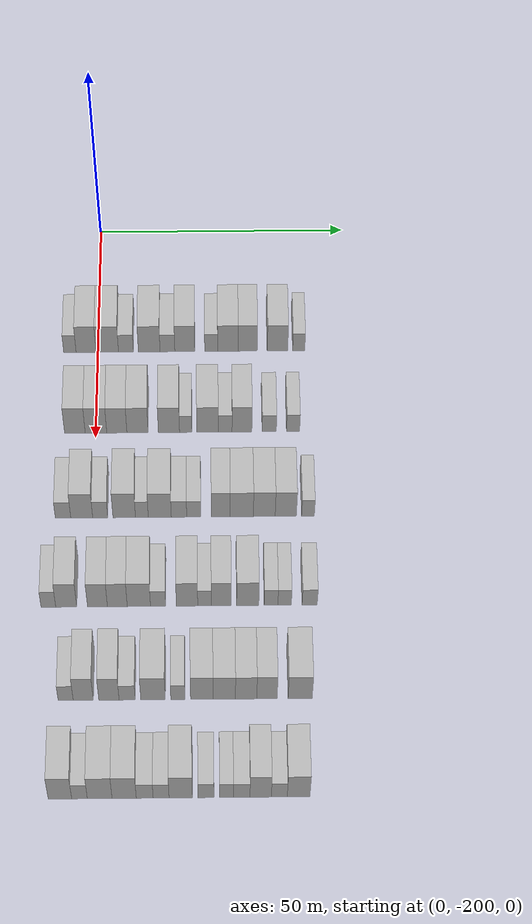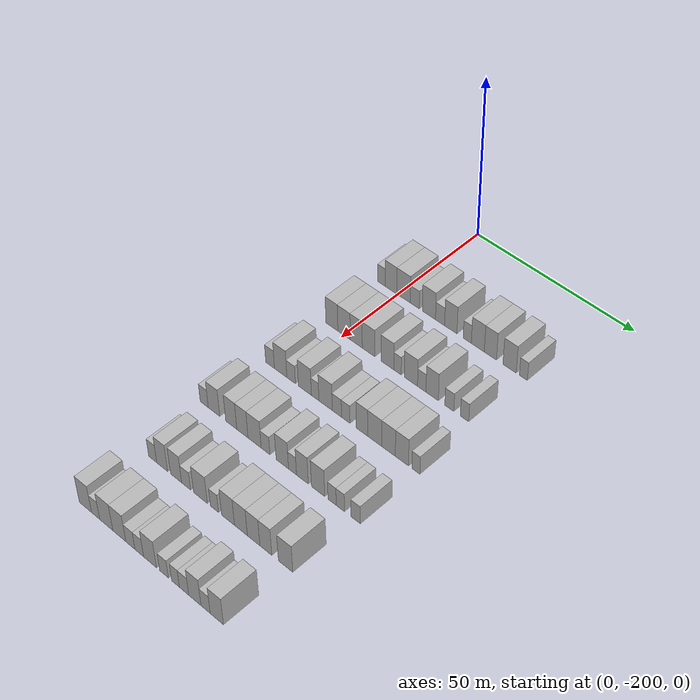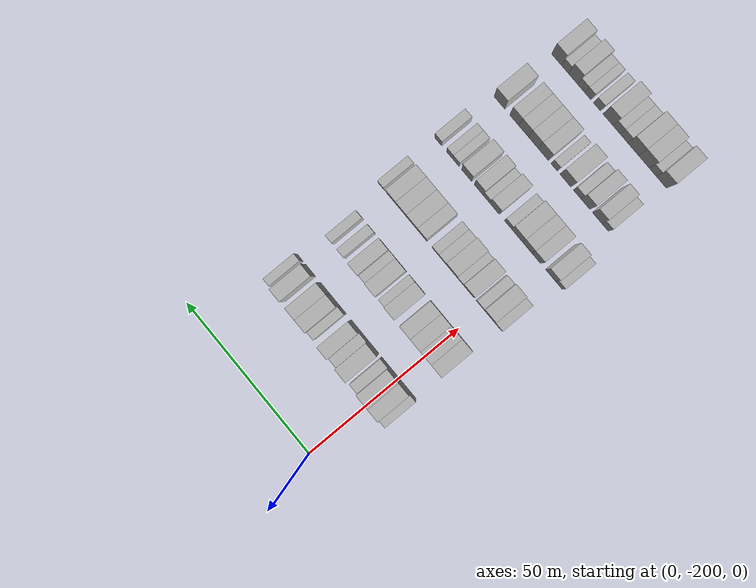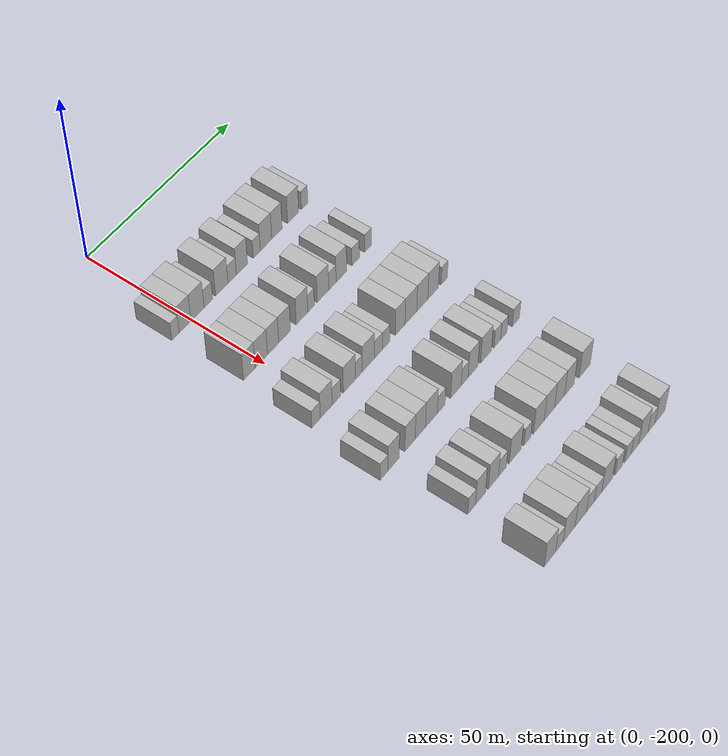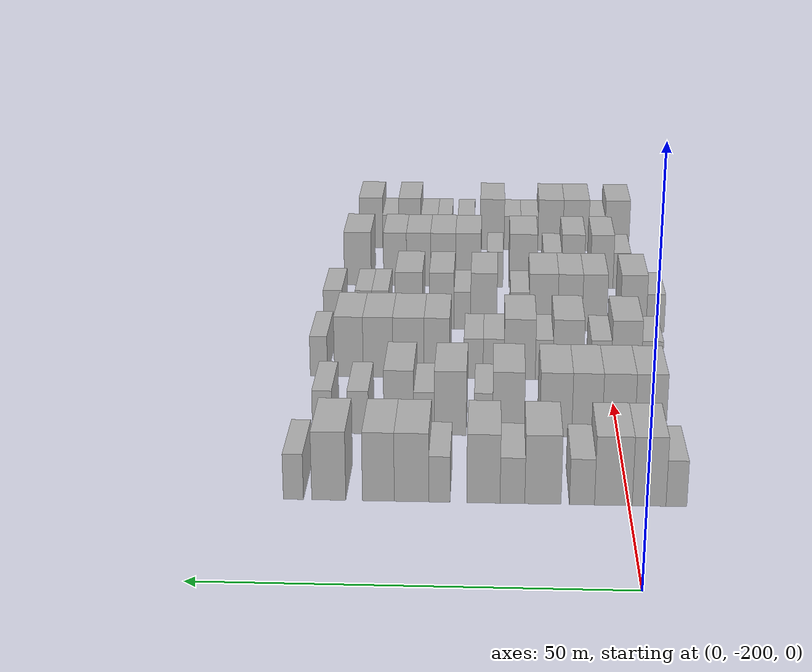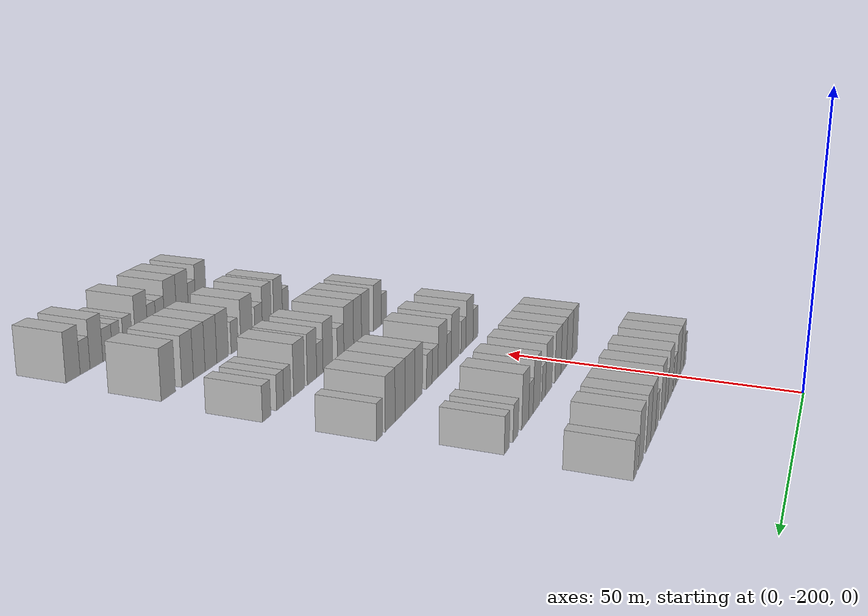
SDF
<sdf version="1.6">
 <world name="default">
  <model name="building_39">
   <static>1</static>
   <pose>25.0000 -205.6031 0 0.000000 0.000000 0.000000</pose>
   <link name="link">
    <pose>0 0 3.00 0 0 0</pose>
    <collision name="collision"><geometry><box><size>10.0000 2.4848 6.0000</size></box></geometry></collision>
    <visual name="visual">
     <cast_shadows>0</cast_shadows>
     <geometry><box><size>10.0000 2.4848 6.0000</size></box></geometry>
     <material>
      <script>
       <uri>model://HANNAS_wall/materials/scripts</uri>
       <uri>model://HANNAS_wall/materials/textures</uri>
       <name>vrc/HANNAS_wall</name>
      </script>
     </material>
    </visual>
   </link>
  </model>
  <model name="building_40">
   <static>1</static>
   <pose>25.0000 -202.3572 0 0.000000 0.000000 0.000000</pose>
   <link name="link">
    <pose>0 0 4.50 0 0 0</pose>
    <collision name="collision"><geometry><box><size>10.0000 4.0070 9.0000</size></box></geometry></collision>
    <visual name="visual">
     <cast_shadows>0</cast_shadows>
     <geometry><box><size>10.0000 4.0070 9.0000</size></box></geometry>
     <material>
      <script>
       <uri>model://HANNAS_wall/materials/scripts</uri>
       <uri>model://HANNAS_wall/materials/textures</uri>
       <name>vrc/HANNAS_wall</name>
      </script>
     </material>
    </visual>
   </link>
  </model>
  <model name="building_41">
   <static>1</static>
   <pose>25.0000 -198.1088 0 0.000000 0.000000 0.000000</pose>
   <link name="link">
    <pose>0 0 4.50 0 0 0</pose>
    <collision name="collision"><geometry><box><size>10.0000 4.4899 9.0000</size></box></geometry></collision>
    <visual name="visual">
     <cast_shadows>0</cast_shadows>
     <geometry><box><size>10.0000 4.4899 9.0000</size></box></geometry>
     <material>
      <script>
       <uri>model://HANNAS_wall/materials/scripts</uri>
       <uri>model://HANNAS_wall/materials/textures</uri>
       <name>vrc/HANNAS_wall</name>
      </script>
     </material>
    </visual>
   </link>
  </model>
  <model name="building_42">
   <static>1</static>
   <pose>25.0000 -194.3705 0 0.000000 0.000000 0.000000</pose>
   <link name="link">
    <pose>0 0 3.00 0 0 0</pose>
    <collision name="collision"><geometry><box><size>10.0000 2.9866 6.0000</size></box></geometry></collision>
    <visual name="visual">
     <cast_shadows>0</cast_shadows>
     <geometry><box><size>10.0000 2.9866 6.0000</size></box></geometry>
     <material>
      <script>
       <uri>model://HANNAS_wall/materials/scripts</uri>
       <uri>model://HANNAS_wall/materials/textures</uri>
       <name>vrc/HANNAS_wall</name>
      </script>
     </material>
    </visual>
   </link>
  </model>
  <model name="building_43">
   <static>1</static>
   <pose>25.0000 -189.7090 0 0.000000 0.000000 0.000000</pose>
   <link name="link">
    <pose>0 0 4.50 0 0 0</pose>
    <collision name="collision"><geometry><box><size>10.0000 4.3365 9.0000</size></box></geometry></collision>
    <visual name="visual">
     <cast_shadows>0</cast_shadows>
     <geometry><box><size>10.0000 4.3365 9.0000</size></box></geometry>
     <material>
      <script>
       <uri>model://HANNAS_wall/materials/scripts</uri>
       <uri>model://HANNAS_wall/materials/textures</uri>
       <name>vrc/HANNAS_wall</name>
      </script>
     </material>
    </visual>
   </link>
  </model>
  <model name="building_44">
   <static>1</static>
   <pose>25.0000 -186.0591 0 0.000000 0.000000 0.000000</pose>
   <link name="link">
    <pose>0 0 3.00 0 0 0</pose>
    <collision name="collision"><geometry><box><size>10.0000 2.9633 6.0000</size></box></geometry></collision>
    <visual name="visual">
     <cast_shadows>0</cast_shadows>
     <geometry><box><size>10.0000 2.9633 6.0000</size></box></geometry>
     <material>
      <script>
       <uri>model://HANNAS_wall/materials/scripts</uri>
       <uri>model://HANNAS_wall/materials/textures</uri>
       <name>vrc/HANNAS_wall</name>
      </script>
     </material>
    </visual>
   </link>
  </model>
  <model name="building_45">
   <static>1</static>
   <pose>25.0000 -182.5844 0 0.000000 0.000000 0.000000</pose>
   <link name="link">
    <pose>0 0 4.50 0 0 0</pose>
    <collision name="collision"><geometry><box><size>10.0000 3.9861 9.0000</size></box></geometry></collision>
    <visual name="visual">
     <cast_shadows>0</cast_shadows>
     <geometry><box><size>10.0000 3.9861 9.0000</size></box></geometry>
     <material>
      <script>
       <uri>model://HANNAS_wall/materials/scripts</uri>
       <uri>model://HANNAS_wall/materials/textures</uri>
       <name>vrc/HANNAS_wall</name>
      </script>
     </material>
    </visual>
   </link>
  </model>
  <model name="building_46">
   <static>1</static>
   <pose>25.0000 -177.3015 0 0.000000 0.000000 0.000000</pose>
   <link name="link">
    <pose>0 0 3.00 0 0 0</pose>
    <collision name="collision"><geometry><box><size>10.0000 2.5799 6.0000</size></box></geometry></collision>
    <visual name="visual">
     <cast_shadows>0</cast_shadows>
     <geometry><box><size>10.0000 2.5799 6.0000</size></box></geometry>
     <material>
      <script>
       <uri>model://HANNAS_wall/materials/scripts</uri>
       <uri>model://HANNAS_wall/materials/textures</uri>
       <name>vrc/HANNAS_wall</name>
      </script>
     </material>
    </visual>
   </link>
  </model>
  <model name="building_47">
   <static>1</static>
   <pose>25.0000 -173.9532 0 0.000000 0.000000 0.000000</pose>
   <link name="link">
    <pose>0 0 4.50 0 0 0</pose>
    <collision name="collision"><geometry><box><size>10.0000 4.1166 9.0000</size></box></geometry></collision>
    <visual name="visual">
     <cast_shadows>0</cast_shadows>
     <geometry><box><size>10.0000 4.1166 9.0000</size></box></geometry>
     <material>
      <script>
       <uri>model://HANNAS_wall/materials/scripts</uri>
       <uri>model://HANNAS_wall/materials/textures</uri>
       <name>vrc/HANNAS_wall</name>
      </script>
     </material>
    </visual>
   </link>
  </model>
  <model name="building_48">
   <static>1</static>
   <pose>25.0000 -169.9814 0 0.000000 0.000000 0.000000</pose>
   <link name="link">
    <pose>0 0 4.50 0 0 0</pose>
    <collision name="collision"><geometry><box><size>10.0000 3.8270 9.0000</size></box></geometry></collision>
    <visual name="visual">
     <cast_shadows>0</cast_shadows>
     <geometry><box><size>10.0000 3.8270 9.0000</size></box></geometry>
     <material>
      <script>
       <uri>model://HANNAS_wall/materials/scripts</uri>
       <uri>model://HANNAS_wall/materials/textures</uri>
       <name>vrc/HANNAS_wall</name>
      </script>
     </material>
    </visual>
   </link>
  </model>
  <model name="building_49">
   <static>1</static>
   <pose>25.0000 -164.0157 0 0.000000 0.000000 0.000000</pose>
   <link name="link">
    <pose>0 0 4.50 0 0 0</pose>
    <collision name="collision"><geometry><box><size>10.0000 4.1044 9.0000</size></box></geometry></collision>
    <visual name="visual">
     <cast_shadows>0</cast_shadows>
     <geometry><box><size>10.0000 4.1044 9.0000</size></box></geometry>
     <material>
      <script>
       <uri>model://HANNAS_wall/materials/scripts</uri>
       <uri>model://HANNAS_wall/materials/textures</uri>
       <name>vrc/HANNAS_wall</name>
      </script>
     </material>
    </visual>
   </link>
  </model>
  <model name="building_50">
   <static>1</static>
   <pose>25.0000 -159.7517 0 0.000000 0.000000 0.000000</pose>
   <link name="link">
    <pose>0 0 3.00 0 0 0</pose>
    <collision name="collision"><geometry><box><size>10.0000 2.4236 6.0000</size></box></geometry></collision>
    <visual name="visual">
     <cast_shadows>0</cast_shadows>
     <geometry><box><size>10.0000 2.4236 6.0000</size></box></geometry>
     <material>
      <script>
       <uri>model://HANNAS_wall/materials/scripts</uri>
       <uri>model://HANNAS_wall/materials/textures</uri>
       <name>vrc/HANNAS_wall</name>
      </script>
     </material>
    </visual>
   </link>
  </model>
  <model name="building_210">
   <static>1</static>
   <pose>44.0000 -204.0883 0 0.000000 0.000000 0.000000</pose>
   <link name="link">
    <pose>0 0 4.50 0 0 0</pose>
    <collision name="collision"><geometry><box><size>10.0000 4.0305 9.0000</size></box></geometry></collision>
    <visual name="visual">
     <cast_shadows>0</cast_shadows>
     <geometry><box><size>10.0000 4.0305 9.0000</size></box></geometry>
     <material>
      <script>
       <uri>model://HANNAS_wall/materials/scripts</uri>
       <uri>model://HANNAS_wall/materials/textures</uri>
       <name>vrc/HANNAS_wall</name>
      </script>
     </material>
    </visual>
   </link>
  </model>
  <model name="building_211">
   <static>1</static>
   <pose>44.0000 -199.9650 0 0.000000 0.000000 0.000000</pose>
   <link name="link">
    <pose>0 0 4.50 0 0 0</pose>
    <collision name="collision"><geometry><box><size>10.0000 4.2163 9.0000</size></box></geometry></collision>
    <visual name="visual">
     <cast_shadows>0</cast_shadows>
     <geometry><box><size>10.0000 4.2163 9.0000</size></box></geometry>
     <material>
      <script>
       <uri>model://HANNAS_wall/materials/scripts</uri>
       <uri>model://HANNAS_wall/materials/textures</uri>
       <name>vrc/HANNAS_wall</name>
      </script>
     </material>
    </visual>
   </link>
  </model>
  <model name="building_212">
   <static>1</static>
   <pose>44.0000 -195.8840 0 0.000000 0.000000 0.000000</pose>
   <link name="link">
    <pose>0 0 4.50 0 0 0</pose>
    <collision name="collision"><geometry><box><size>10.0000 3.9457 9.0000</size></box></geometry></collision>
    <visual name="visual">
     <cast_shadows>0</cast_shadows>
     <geometry><box><size>10.0000 3.9457 9.0000</size></box></geometry>
     <material>
      <script>
       <uri>model://HANNAS_wall/materials/scripts</uri>
       <uri>model://HANNAS_wall/materials/textures</uri>
       <name>vrc/HANNAS_wall</name>
      </script>
     </material>
    </visual>
   </link>
  </model>
  <model name="building_213">
   <static>1</static>
   <pose>44.0000 -191.8312 0 0.000000 0.000000 0.000000</pose>
   <link name="link">
    <pose>0 0 4.50 0 0 0</pose>
    <collision name="collision"><geometry><box><size>10.0000 4.1600 9.0000</size></box></geometry></collision>
    <visual name="visual">
     <cast_shadows>0</cast_shadows>
     <geometry><box><size>10.0000 4.1600 9.0000</size></box></geometry>
     <material>
      <script>
       <uri>model://HANNAS_wall/materials/scripts</uri>
       <uri>model://HANNAS_wall/materials/textures</uri>
       <name>vrc/HANNAS_wall</name>
      </script>
     </material>
    </visual>
   </link>
  </model>
  <model name="building_214">
   <static>1</static>
   <pose>44.0000 -185.6821 0 0.000000 0.000000 0.000000</pose>
   <link name="link">
    <pose>0 0 4.50 0 0 0</pose>
    <collision name="collision"><geometry><box><size>10.0000 4.1380 9.0000</size></box></geometry></collision>
    <visual name="visual">
     <cast_shadows>0</cast_shadows>
     <geometry><box><size>10.0000 4.1380 9.0000</size></box></geometry>
     <material>
      <script>
       <uri>model://HANNAS_wall/materials/scripts</uri>
       <uri>model://HANNAS_wall/materials/textures</uri>
       <name>vrc/HANNAS_wall</name>
      </script>
     </material>
    </visual>
   </link>
  </model>
  <model name="building_215">
   <static>1</static>
   <pose>44.0000 -182.4116 0 0.000000 0.000000 0.000000</pose>
   <link name="link">
    <pose>0 0 3.00 0 0 0</pose>
    <collision name="collision"><geometry><box><size>10.0000 2.4030 6.0000</size></box></geometry></collision>
    <visual name="visual">
     <cast_shadows>0</cast_shadows>
     <geometry><box><size>10.0000 2.4030 6.0000</size></box></geometry>
     <material>
      <script>
       <uri>model://HANNAS_wall/materials/scripts</uri>
       <uri>model://HANNAS_wall/materials/textures</uri>
       <name>vrc/HANNAS_wall</name>
      </script>
     </material>
    </visual>
   </link>
  </model>
  <model name="building_216">
   <static>1</static>
   <pose>44.0000 -178.1093 0 0.000000 0.000000 0.000000</pose>
   <link name="link">
    <pose>0 0 4.50 0 0 0</pose>
    <collision name="collision"><geometry><box><size>10.0000 4.2015 9.0000</size></box></geometry></collision>
    <visual name="visual">
     <cast_shadows>0</cast_shadows>
     <geometry><box><size>10.0000 4.2015 9.0000</size></box></geometry>
     <material>
      <script>
       <uri>model://HANNAS_wall/materials/scripts</uri>
       <uri>model://HANNAS_wall/materials/textures</uri>
       <name>vrc/HANNAS_wall</name>
      </script>
     </material>
    </visual>
   </link>
  </model>
  <model name="building_217">
   <static>1</static>
   <pose>44.0000 -174.6696 0 0.000000 0.000000 0.000000</pose>
   <link name="link">
    <pose>0 0 3.00 0 0 0</pose>
    <collision name="collision"><geometry><box><size>10.0000 2.6779 6.0000</size></box></geometry></collision>
    <visual name="visual">
     <cast_shadows>0</cast_shadows>
     <geometry><box><size>10.0000 2.6779 6.0000</size></box></geometry>
     <material>
      <script>
       <uri>model://HANNAS_wall/materials/scripts</uri>
       <uri>model://HANNAS_wall/materials/textures</uri>
       <name>vrc/HANNAS_wall</name>
      </script>
     </material>
    </visual>
   </link>
  </model>
  <model name="building_218">
   <static>1</static>
   <pose>44.0000 -171.3869 0 0.000000 0.000000 0.000000</pose>
   <link name="link">
    <pose>0 0 4.50 0 0 0</pose>
    <collision name="collision"><geometry><box><size>10.0000 3.8875 9.0000</size></box></geometry></collision>
    <visual name="visual">
     <cast_shadows>0</cast_shadows>
     <geometry><box><size>10.0000 3.8875 9.0000</size></box></geometry>
     <material>
      <script>
       <uri>model://HANNAS_wall/materials/scripts</uri>
       <uri>model://HANNAS_wall/materials/textures</uri>
       <name>vrc/HANNAS_wall</name>
      </script>
     </material>
    </visual>
   </link>
  </model>
  <model name="building_219">
   <static>1</static>
   <pose>44.0000 -166.0498 0 0.000000 0.000000 0.000000</pose>
   <link name="link">
    <pose>0 0 3.00 0 0 0</pose>
    <collision name="collision"><geometry><box><size>10.0000 2.7866 6.0000</size></box></geometry></collision>
    <visual name="visual">
     <cast_shadows>0</cast_shadows>
     <geometry><box><size>10.0000 2.7866 6.0000</size></box></geometry>
     <material>
      <script>
       <uri>model://HANNAS_wall/materials/scripts</uri>
       <uri>model://HANNAS_wall/materials/textures</uri>
       <name>vrc/HANNAS_wall</name>
      </script>
     </material>
    </visual>
   </link>
  </model>
  <model name="building_220">
   <static>1</static>
   <pose>44.0000 -161.3761 0 0.000000 0.000000 0.000000</pose>
   <link name="link">
    <pose>0 0 3.00 0 0 0</pose>
    <collision name="collision"><geometry><box><size>10.0000 2.5609 6.0000</size></box></geometry></collision>
    <visual name="visual">
     <cast_shadows>0</cast_shadows>
     <geometry><box><size>10.0000 2.5609 6.0000</size></box></geometry>
     <material>
      <script>
       <uri>model://HANNAS_wall/materials/scripts</uri>
       <uri>model://HANNAS_wall/materials/textures</uri>
       <name>vrc/HANNAS_wall</name>
      </script>
     </material>
    </visual>
   </link>
  </model>
  <model name="building_371">
   <static>1</static>
   <pose>63.0000 -205.8464 0 0.000000 0.000000 0.000000</pose>
   <link name="link">
    <pose>0 0 3.00 0 0 0</pose>
    <collision name="collision"><geometry><box><size>10.0000 2.9491 6.0000</size></box></geometry></collision>
    <visual name="visual">
     <cast_shadows>0</cast_shadows>
     <geometry><box><size>10.0000 2.9491 6.0000</size></box></geometry>
     <material>
      <script>
       <uri>model://HANNAS_wall/materials/scripts</uri>
       <uri>model://HANNAS_wall/materials/textures</uri>
       <name>vrc/HANNAS_wall</name>
      </script>
     </material>
    </visual>
   </link>
  </model>
  <model name="building_372">
   <static>1</static>
   <pose>63.0000 -202.2777 0 0.000000 0.000000 0.000000</pose>
   <link name="link">
    <pose>0 0 4.50 0 0 0</pose>
    <collision name="collision"><geometry><box><size>10.0000 4.1883 9.0000</size></box></geometry></collision>
    <visual name="visual">
     <cast_shadows>0</cast_shadows>
     <geometry><box><size>10.0000 4.1883 9.0000</size></box></geometry>
     <material>
      <script>
       <uri>model://HANNAS_wall/materials/scripts</uri>
       <uri>model://HANNAS_wall/materials/textures</uri>
       <name>vrc/HANNAS_wall</name>
      </script>
     </material>
    </visual>
   </link>
  </model>
  <model name="building_373">
   <static>1</static>
   <pose>63.0000 -198.7435 0 0.000000 0.000000 0.000000</pose>
   <link name="link">
    <pose>0 0 3.00 0 0 0</pose>
    <collision name="collision"><geometry><box><size>10.0000 2.8802 6.0000</size></box></geometry></collision>
    <visual name="visual">
     <cast_shadows>0</cast_shadows>
     <geometry><box><size>10.0000 2.8802 6.0000</size></box></geometry>
     <material>
      <script>
       <uri>model://HANNAS_wall/materials/scripts</uri>
       <uri>model://HANNAS_wall/materials/textures</uri>
       <name>vrc/HANNAS_wall</name>
      </script>
     </material>
    </visual>
   </link>
  </model>
  <model name="building_374">
   <static>1</static>
   <pose>63.0000 -194.1563 0 0.000000 0.000000 0.000000</pose>
   <link name="link">
    <pose>0 0 4.50 0 0 0</pose>
    <collision name="collision"><geometry><box><size>10.0000 4.2942 9.0000</size></box></geometry></collision>
    <visual name="visual">
     <cast_shadows>0</cast_shadows>
     <geometry><box><size>10.0000 4.2942 9.0000</size></box></geometry>
     <material>
      <script>
       <uri>model://HANNAS_wall/materials/scripts</uri>
       <uri>model://HANNAS_wall/materials/textures</uri>
       <name>vrc/HANNAS_wall</name>
      </script>
     </material>
    </visual>
   </link>
  </model>
  <model name="building_375">
   <static>1</static>
   <pose>63.0000 -190.7854 0 0.000000 0.000000 0.000000</pose>
   <link name="link">
    <pose>0 0 3.00 0 0 0</pose>
    <collision name="collision"><geometry><box><size>10.0000 2.4475 6.0000</size></box></geometry></collision>
    <visual name="visual">
     <cast_shadows>0</cast_shadows>
     <geometry><box><size>10.0000 2.4475 6.0000</size></box></geometry>
     <material>
      <script>
       <uri>model://HANNAS_wall/materials/scripts</uri>
       <uri>model://HANNAS_wall/materials/textures</uri>
       <name>vrc/HANNAS_wall</name>
      </script>
     </material>
    </visual>
   </link>
  </model>
  <model name="building_376">
   <static>1</static>
   <pose>63.0000 -187.3639 0 0.000000 0.000000 0.000000</pose>
   <link name="link">
    <pose>0 0 4.50 0 0 0</pose>
    <collision name="collision"><geometry><box><size>10.0000 4.3954 9.0000</size></box></geometry></collision>
    <visual name="visual">
     <cast_shadows>0</cast_shadows>
     <geometry><box><size>10.0000 4.3954 9.0000</size></box></geometry>
     <material>
      <script>
       <uri>model://HANNAS_wall/materials/scripts</uri>
       <uri>model://HANNAS_wall/materials/textures</uri>
       <name>vrc/HANNAS_wall</name>
      </script>
     </material>
    </visual>
   </link>
  </model>
  <model name="building_377">
   <static>1</static>
   <pose>63.0000 -183.6902 0 0.000000 0.000000 0.000000</pose>
   <link name="link">
    <pose>0 0 3.00 0 0 0</pose>
    <collision name="collision"><geometry><box><size>10.0000 2.9520 6.0000</size></box></geometry></collision>
    <visual name="visual">
     <cast_shadows>0</cast_shadows>
     <geometry><box><size>10.0000 2.9520 6.0000</size></box></geometry>
     <material>
      <script>
       <uri>model://HANNAS_wall/materials/scripts</uri>
       <uri>model://HANNAS_wall/materials/textures</uri>
       <name>vrc/HANNAS_wall</name>
      </script>
     </material>
    </visual>
   </link>
  </model>
  <model name="building_378">
   <static>1</static>
   <pose>63.0000 -180.8607 0 0.000000 0.000000 0.000000</pose>
   <link name="link">
    <pose>0 0 3.00 0 0 0</pose>
    <collision name="collision"><geometry><box><size>10.0000 2.7070 6.0000</size></box></geometry></collision>
    <visual name="visual">
     <cast_shadows>0</cast_shadows>
     <geometry><box><size>10.0000 2.7070 6.0000</size></box></geometry>
     <material>
      <script>
       <uri>model://HANNAS_wall/materials/scripts</uri>
       <uri>model://HANNAS_wall/materials/textures</uri>
       <name>vrc/HANNAS_wall</name>
      </script>
     </material>
    </visual>
   </link>
  </model>
  <model name="building_379">
   <static>1</static>
   <pose>63.0000 -175.7053 0 0.000000 0.000000 0.000000</pose>
   <link name="link">
    <pose>0 0 4.50 0 0 0</pose>
    <collision name="collision"><geometry><box><size>10.0000 3.6039 9.0000</size></box></geometry></collision>
    <visual name="visual">
     <cast_shadows>0</cast_shadows>
     <geometry><box><size>10.0000 3.6039 9.0000</size></box></geometry>
     <material>
      <script>
       <uri>model://HANNAS_wall/materials/scripts</uri>
       <uri>model://HANNAS_wall/materials/textures</uri>
       <name>vrc/HANNAS_wall</name>
      </script>
     </material>
    </visual>
   </link>
  </model>
  <model name="building_380">
   <static>1</static>
   <pose>63.0000 -171.6891 0 0.000000 0.000000 0.000000</pose>
   <link name="link">
    <pose>0 0 4.50 0 0 0</pose>
    <collision name="collision"><geometry><box><size>10.0000 4.4285 9.0000</size></box></geometry></collision>
    <visual name="visual">
     <cast_shadows>0</cast_shadows>
     <geometry><box><size>10.0000 4.4285 9.0000</size></box></geometry>
     <material>
      <script>
       <uri>model://HANNAS_wall/materials/scripts</uri>
       <uri>model://HANNAS_wall/materials/textures</uri>
       <name>vrc/HANNAS_wall</name>
      </script>
     </material>
    </visual>
   </link>
  </model>
  <model name="building_381">
   <static>1</static>
   <pose>63.0000 -167.3889 0 0.000000 0.000000 0.000000</pose>
   <link name="link">
    <pose>0 0 4.50 0 0 0</pose>
    <collision name="collision"><geometry><box><size>10.0000 4.1718 9.0000</size></box></geometry></collision>
    <visual name="visual">
     <cast_shadows>0</cast_shadows>
     <geometry><box><size>10.0000 4.1718 9.0000</size></box></geometry>
     <material>
      <script>
       <uri>model://HANNAS_wall/materials/scripts</uri>
       <uri>model://HANNAS_wall/materials/textures</uri>
       <name>vrc/HANNAS_wall</name>
      </script>
     </material>
    </visual>
   </link>
  </model>
  <model name="building_382">
   <static>1</static>
   <pose>63.0000 -163.2753 0 0.000000 0.000000 0.000000</pose>
   <link name="link">
    <pose>0 0 4.50 0 0 0</pose>
    <collision name="collision"><geometry><box><size>10.0000 4.0555 9.0000</size></box></geometry></collision>
    <visual name="visual">
     <cast_shadows>0</cast_shadows>
     <geometry><box><size>10.0000 4.0555 9.0000</size></box></geometry>
     <material>
      <script>
       <uri>model://HANNAS_wall/materials/scripts</uri>
       <uri>model://HANNAS_wall/materials/textures</uri>
       <name>vrc/HANNAS_wall</name>
      </script>
     </material>
    </visual>
   </link>
  </model>
  <model name="building_383">
   <static>1</static>
   <pose>63.0000 -159.0303 0 0.000000 0.000000 0.000000</pose>
   <link name="link">
    <pose>0 0 3.00 0 0 0</pose>
    <collision name="collision"><geometry><box><size>10.0000 2.4345 6.0000</size></box></geometry></collision>
    <visual name="visual">
     <cast_shadows>0</cast_shadows>
     <geometry><box><size>10.0000 2.4345 6.0000</size></box></geometry>
     <material>
      <script>
       <uri>model://HANNAS_wall/materials/scripts</uri>
       <uri>model://HANNAS_wall/materials/textures</uri>
       <name>vrc/HANNAS_wall</name>
      </script>
     </material>
    </visual>
   </link>
  </model>
  <model name="building_548">
   <static>1</static>
   <pose>82.0000 -208.0111 0 0.000000 0.000000 0.000000</pose>
   <link name="link">
    <pose>0 0 3.00 0 0 0</pose>
    <collision name="collision"><geometry><box><size>10.0000 2.7335 6.0000</size></box></geometry></collision>
    <visual name="visual">
     <cast_shadows>0</cast_shadows>
     <geometry><box><size>10.0000 2.7335 6.0000</size></box></geometry>
     <material>
      <script>
       <uri>model://HANNAS_wall/materials/scripts</uri>
       <uri>model://HANNAS_wall/materials/textures</uri>
       <name>vrc/HANNAS_wall</name>
      </script>
     </material>
    </visual>
   </link>
  </model>
  <model name="building_549">
   <static>1</static>
   <pose>82.0000 -204.6798 0 0.000000 0.000000 0.000000</pose>
   <link name="link">
    <pose>0 0 4.50 0 0 0</pose>
    <collision name="collision"><geometry><box><size>10.0000 3.9291 9.0000</size></box></geometry></collision>
    <visual name="visual">
     <cast_shadows>0</cast_shadows>
     <geometry><box><size>10.0000 3.9291 9.0000</size></box></geometry>
     <material>
      <script>
       <uri>model://HANNAS_wall/materials/scripts</uri>
       <uri>model://HANNAS_wall/materials/textures</uri>
       <name>vrc/HANNAS_wall</name>
      </script>
     </material>
    </visual>
   </link>
  </model>
  <model name="building_550">
   <static>1</static>
   <pose>82.0000 -198.8608 0 0.000000 0.000000 0.000000</pose>
   <link name="link">
    <pose>0 0 4.50 0 0 0</pose>
    <collision name="collision"><geometry><box><size>10.0000 3.7090 9.0000</size></box></geometry></collision>
    <visual name="visual">
     <cast_shadows>0</cast_shadows>
     <geometry><box><size>10.0000 3.7090 9.0000</size></box></geometry>
     <material>
      <script>
       <uri>model://HANNAS_wall/materials/scripts</uri>
       <uri>model://HANNAS_wall/materials/textures</uri>
       <name>vrc/HANNAS_wall</name>
      </script>
     </material>
    </visual>
   </link>
  </model>
  <model name="building_551">
   <static>1</static>
   <pose>82.0000 -195.1582 0 0.000000 0.000000 0.000000</pose>
   <link name="link">
    <pose>0 0 4.50 0 0 0</pose>
    <collision name="collision"><geometry><box><size>10.0000 3.6963 9.0000</size></box></geometry></collision>
    <visual name="visual">
     <cast_shadows>0</cast_shadows>
     <geometry><box><size>10.0000 3.6963 9.0000</size></box></geometry>
     <material>
      <script>
       <uri>model://HANNAS_wall/materials/scripts</uri>
       <uri>model://HANNAS_wall/materials/textures</uri>
       <name>vrc/HANNAS_wall</name>
      </script>
     </material>
    </visual>
   </link>
  </model>
  <model name="building_552">
   <static>1</static>
   <pose>82.0000 -191.1469 0 0.000000 0.000000 0.000000</pose>
   <link name="link">
    <pose>0 0 4.50 0 0 0</pose>
    <collision name="collision"><geometry><box><size>10.0000 4.3262 9.0000</size></box></geometry></collision>
    <visual name="visual">
     <cast_shadows>0</cast_shadows>
     <geometry><box><size>10.0000 4.3262 9.0000</size></box></geometry>
     <material>
      <script>
       <uri>model://HANNAS_wall/materials/scripts</uri>
       <uri>model://HANNAS_wall/materials/textures</uri>
       <name>vrc/HANNAS_wall</name>
      </script>
     </material>
    </visual>
   </link>
  </model>
  <model name="building_553">
   <static>1</static>
   <pose>82.0000 -187.5595 0 0.000000 0.000000 0.000000</pose>
   <link name="link">
    <pose>0 0 3.00 0 0 0</pose>
    <collision name="collision"><geometry><box><size>10.0000 2.8487 6.0000</size></box></geometry></collision>
    <visual name="visual">
     <cast_shadows>0</cast_shadows>
     <geometry><box><size>10.0000 2.8487 6.0000</size></box></geometry>
     <material>
      <script>
       <uri>model://HANNAS_wall/materials/scripts</uri>
       <uri>model://HANNAS_wall/materials/textures</uri>
       <name>vrc/HANNAS_wall</name>
      </script>
     </material>
    </visual>
   </link>
  </model>
  <model name="building_554">
   <static>1</static>
   <pose>82.0000 -182.1514 0 0.000000 0.000000 0.000000</pose>
   <link name="link">
    <pose>0 0 4.50 0 0 0</pose>
    <collision name="collision"><geometry><box><size>10.0000 3.9675 9.0000</size></box></geometry></collision>
    <visual name="visual">
     <cast_shadows>0</cast_shadows>
     <geometry><box><size>10.0000 3.9675 9.0000</size></box></geometry>
     <material>
      <script>
       <uri>model://HANNAS_wall/materials/scripts</uri>
       <uri>model://HANNAS_wall/materials/textures</uri>
       <name>vrc/HANNAS_wall</name>
      </script>
     </material>
    </visual>
   </link>
  </model>
  <model name="building_555">
   <static>1</static>
   <pose>82.0000 -178.8977 0 0.000000 0.000000 0.000000</pose>
   <link name="link">
    <pose>0 0 3.00 0 0 0</pose>
    <collision name="collision"><geometry><box><size>10.0000 2.5398 6.0000</size></box></geometry></collision>
    <visual name="visual">
     <cast_shadows>0</cast_shadows>
     <geometry><box><size>10.0000 2.5398 6.0000</size></box></geometry>
     <material>
      <script>
       <uri>model://HANNAS_wall/materials/scripts</uri>
       <uri>model://HANNAS_wall/materials/textures</uri>
       <name>vrc/HANNAS_wall</name>
      </script>
     </material>
    </visual>
   </link>
  </model>
  <model name="building_556">
   <static>1</static>
   <pose>82.0000 -175.7666 0 0.000000 0.000000 0.000000</pose>
   <link name="link">
    <pose>0 0 4.50 0 0 0</pose>
    <collision name="collision"><geometry><box><size>10.0000 3.7225 9.0000</size></box></geometry></collision>
    <visual name="visual">
     <cast_shadows>0</cast_shadows>
     <geometry><box><size>10.0000 3.7225 9.0000</size></box></geometry>
     <material>
      <script>
       <uri>model://HANNAS_wall/materials/scripts</uri>
       <uri>model://HANNAS_wall/materials/textures</uri>
       <name>vrc/HANNAS_wall</name>
      </script>
     </material>
    </visual>
   </link>
  </model>
  <model name="building_557">
   <static>1</static>
   <pose>82.0000 -170.8367 0 0.000000 0.000000 0.000000</pose>
   <link name="link">
    <pose>0 0 4.50 0 0 0</pose>
    <collision name="collision"><geometry><box><size>10.0000 4.1372 9.0000</size></box></geometry></collision>
    <visual name="visual">
     <cast_shadows>0</cast_shadows>
     <geometry><box><size>10.0000 4.1372 9.0000</size></box></geometry>
     <material>
      <script>
       <uri>model://HANNAS_wall/materials/scripts</uri>
       <uri>model://HANNAS_wall/materials/textures</uri>
       <name>vrc/HANNAS_wall</name>
      </script>
     </material>
    </visual>
   </link>
  </model>
  <model name="building_558">
   <static>1</static>
   <pose>82.0000 -166.4926 0 0.000000 0.000000 0.000000</pose>
   <link name="link">
    <pose>0 0 3.00 0 0 0</pose>
    <collision name="collision"><geometry><box><size>10.0000 2.5511 6.0000</size></box></geometry></collision>
    <visual name="visual">
     <cast_shadows>0</cast_shadows>
     <geometry><box><size>10.0000 2.5511 6.0000</size></box></geometry>
     <material>
      <script>
       <uri>model://HANNAS_wall/materials/scripts</uri>
       <uri>model://HANNAS_wall/materials/textures</uri>
       <name>vrc/HANNAS_wall</name>
      </script>
     </material>
    </visual>
   </link>
  </model>
  <model name="building_559">
   <static>1</static>
   <pose>82.0000 -163.9585 0 0.000000 0.000000 0.000000</pose>
   <link name="link">
    <pose>0 0 3.00 0 0 0</pose>
    <collision name="collision"><geometry><box><size>10.0000 2.5170 6.0000</size></box></geometry></collision>
    <visual name="visual">
     <cast_shadows>0</cast_shadows>
     <geometry><box><size>10.0000 2.5170 6.0000</size></box></geometry>
     <material>
      <script>
       <uri>model://HANNAS_wall/materials/scripts</uri>
       <uri>model://HANNAS_wall/materials/textures</uri>
       <name>vrc/HANNAS_wall</name>
      </script>
     </material>
    </visual>
   </link>
  </model>
  <model name="building_560">
   <static>1</static>
   <pose>82.0000 -159.2888 0 0.000000 0.000000 0.000000</pose>
   <link name="link">
    <pose>0 0 3.00 0 0 0</pose>
    <collision name="collision"><geometry><box><size>10.0000 2.8225 6.0000</size></box></geometry></collision>
    <visual name="visual">
     <cast_shadows>0</cast_shadows>
     <geometry><box><size>10.0000 2.8225 6.0000</size></box></geometry>
     <material>
      <script>
       <uri>model://HANNAS_wall/materials/scripts</uri>
       <uri>model://HANNAS_wall/materials/textures</uri>
       <name>vrc/HANNAS_wall</name>
      </script>
     </material>
    </visual>
   </link>
  </model>
  <model name="building_728">
   <static>1</static>
   <pose>101.0000 -204.2402 0 0.000000 0.000000 0.000000</pose>
   <link name="link">
    <pose>0 0 3.00 0 0 0</pose>
    <collision name="collision"><geometry><box><size>10.0000 2.7378 6.0000</size></box></geometry></collision>
    <visual name="visual">
     <cast_shadows>0</cast_shadows>
     <geometry><box><size>10.0000 2.7378 6.0000</size></box></geometry>
     <material>
      <script>
       <uri>model://HANNAS_wall/materials/scripts</uri>
       <uri>model://HANNAS_wall/materials/textures</uri>
       <name>vrc/HANNAS_wall</name>
      </script>
     </material>
    </visual>
   </link>
  </model>
  <model name="building_729">
   <static>1</static>
   <pose>101.0000 -201.0414 0 0.000000 0.000000 0.000000</pose>
   <link name="link">
    <pose>0 0 4.50 0 0 0</pose>
    <collision name="collision"><geometry><box><size>10.0000 3.6598 9.0000</size></box></geometry></collision>
    <visual name="visual">
     <cast_shadows>0</cast_shadows>
     <geometry><box><size>10.0000 3.6598 9.0000</size></box></geometry>
     <material>
      <script>
       <uri>model://HANNAS_wall/materials/scripts</uri>
       <uri>model://HANNAS_wall/materials/textures</uri>
       <name>vrc/HANNAS_wall</name>
      </script>
     </material>
    </visual>
   </link>
  </model>
  <model name="building_730">
   <static>1</static>
   <pose>101.0000 -196.3730 0 0.000000 0.000000 0.000000</pose>
   <link name="link">
    <pose>0 0 4.50 0 0 0</pose>
    <collision name="collision"><geometry><box><size>10.0000 3.6771 9.0000</size></box></geometry></collision>
    <visual name="visual">
     <cast_shadows>0</cast_shadows>
     <geometry><box><size>10.0000 3.6771 9.0000</size></box></geometry>
     <material>
      <script>
       <uri>model://HANNAS_wall/materials/scripts</uri>
       <uri>model://HANNAS_wall/materials/textures</uri>
       <name>vrc/HANNAS_wall</name>
      </script>
     </material>
    </visual>
   </link>
  </model>
  <model name="building_731">
   <static>1</static>
   <pose>101.0000 -193.0567 0 0.000000 0.000000 0.000000</pose>
   <link name="link">
    <pose>0 0 3.00 0 0 0</pose>
    <collision name="collision"><geometry><box><size>10.0000 2.9556 6.0000</size></box></geometry></collision>
    <visual name="visual">
     <cast_shadows>0</cast_shadows>
     <geometry><box><size>10.0000 2.9556 6.0000</size></box></geometry>
     <material>
      <script>
       <uri>model://HANNAS_wall/materials/scripts</uri>
       <uri>model://HANNAS_wall/materials/textures</uri>
       <name>vrc/HANNAS_wall</name>
      </script>
     </material>
    </visual>
   </link>
  </model>
  <model name="building_732">
   <static>1</static>
   <pose>101.0000 -188.3492 0 0.000000 0.000000 0.000000</pose>
   <link name="link">
    <pose>0 0 4.50 0 0 0</pose>
    <collision name="collision"><geometry><box><size>10.0000 4.4595 9.0000</size></box></geometry></collision>
    <visual name="visual">
     <cast_shadows>0</cast_shadows>
     <geometry><box><size>10.0000 4.4595 9.0000</size></box></geometry>
     <material>
      <script>
       <uri>model://HANNAS_wall/materials/scripts</uri>
       <uri>model://HANNAS_wall/materials/textures</uri>
       <name>vrc/HANNAS_wall</name>
      </script>
     </material>
    </visual>
   </link>
  </model>
  <model name="building_733">
   <static>1</static>
   <pose>101.0000 -183.8188 0 0.000000 0.000000 0.000000</pose>
   <link name="link">
    <pose>0 0 3.00 0 0 0</pose>
    <collision name="collision"><geometry><box><size>10.0000 2.6013 6.0000</size></box></geometry></collision>
    <visual name="visual">
     <cast_shadows>0</cast_shadows>
     <geometry><box><size>10.0000 2.6013 6.0000</size></box></geometry>
     <material>
      <script>
       <uri>model://HANNAS_wall/materials/scripts</uri>
       <uri>model://HANNAS_wall/materials/textures</uri>
       <name>vrc/HANNAS_wall</name>
      </script>
     </material>
    </visual>
   </link>
  </model>
  <model name="building_734">
   <static>1</static>
   <pose>101.0000 -179.4682 0 0.000000 0.000000 0.000000</pose>
   <link name="link">
    <pose>0 0 4.50 0 0 0</pose>
    <collision name="collision"><geometry><box><size>10.0000 4.0998 9.0000</size></box></geometry></collision>
    <visual name="visual">
     <cast_shadows>0</cast_shadows>
     <geometry><box><size>10.0000 4.0998 9.0000</size></box></geometry>
     <material>
      <script>
       <uri>model://HANNAS_wall/materials/scripts</uri>
       <uri>model://HANNAS_wall/materials/textures</uri>
       <name>vrc/HANNAS_wall</name>
      </script>
     </material>
    </visual>
   </link>
  </model>
  <model name="building_735">
   <static>1</static>
   <pose>101.0000 -175.3942 0 0.000000 0.000000 0.000000</pose>
   <link name="link">
    <pose>0 0 4.50 0 0 0</pose>
    <collision name="collision"><geometry><box><size>10.0000 4.0483 9.0000</size></box></geometry></collision>
    <visual name="visual">
     <cast_shadows>0</cast_shadows>
     <geometry><box><size>10.0000 4.0483 9.0000</size></box></geometry>
     <material>
      <script>
       <uri>model://HANNAS_wall/materials/scripts</uri>
       <uri>model://HANNAS_wall/materials/textures</uri>
       <name>vrc/HANNAS_wall</name>
      </script>
     </material>
    </visual>
   </link>
  </model>
  <model name="building_736">
   <static>1</static>
   <pose>101.0000 -171.4279 0 0.000000 0.000000 0.000000</pose>
   <link name="link">
    <pose>0 0 4.50 0 0 0</pose>
    <collision name="collision"><geometry><box><size>10.0000 3.8842 9.0000</size></box></geometry></collision>
    <visual name="visual">
     <cast_shadows>0</cast_shadows>
     <geometry><box><size>10.0000 3.8842 9.0000</size></box></geometry>
     <material>
      <script>
       <uri>model://HANNAS_wall/materials/scripts</uri>
       <uri>model://HANNAS_wall/materials/textures</uri>
       <name>vrc/HANNAS_wall</name>
      </script>
     </material>
    </visual>
   </link>
  </model>
  <model name="building_737">
   <static>1</static>
   <pose>101.0000 -167.6332 0 0.000000 0.000000 0.000000</pose>
   <link name="link">
    <pose>0 0 4.50 0 0 0</pose>
    <collision name="collision"><geometry><box><size>10.0000 3.7051 9.0000</size></box></geometry></collision>
    <visual name="visual">
     <cast_shadows>0</cast_shadows>
     <geometry><box><size>10.0000 3.7051 9.0000</size></box></geometry>
     <material>
      <script>
       <uri>model://HANNAS_wall/materials/scripts</uri>
       <uri>model://HANNAS_wall/materials/textures</uri>
       <name>vrc/HANNAS_wall</name>
      </script>
     </material>
    </visual>
   </link>
  </model>
  <model name="building_738">
   <static>1</static>
   <pose>101.0000 -161.5920 0 0.000000 0.000000 0.000000</pose>
   <link name="link">
    <pose>0 0 4.50 0 0 0</pose>
    <collision name="collision"><geometry><box><size>10.0000 4.3774 9.0000</size></box></geometry></collision>
    <visual name="visual">
     <cast_shadows>0</cast_shadows>
     <geometry><box><size>10.0000 4.3774 9.0000</size></box></geometry>
     <material>
      <script>
       <uri>model://HANNAS_wall/materials/scripts</uri>
       <uri>model://HANNAS_wall/materials/textures</uri>
       <name>vrc/HANNAS_wall</name>
      </script>
     </material>
    </visual>
   </link>
  </model>
  <model name="building_892">
   <static>1</static>
   <pose>120.0000 -204.7067 0 0.000000 0.000000 0.000000</pose>
   <link name="link">
    <pose>0 0 4.50 0 0 0</pose>
    <collision name="collision"><geometry><box><size>10.0000 4.1635 9.0000</size></box></geometry></collision>
    <visual name="visual">
     <cast_shadows>0</cast_shadows>
     <geometry><box><size>10.0000 4.1635 9.0000</size></box></geometry>
     <material>
      <script>
       <uri>model://HANNAS_wall/materials/scripts</uri>
       <uri>model://HANNAS_wall/materials/textures</uri>
       <name>vrc/HANNAS_wall</name>
      </script>
     </material>
    </visual>
   </link>
  </model>
  <model name="building_893">
   <static>1</static>
   <pose>120.0000 -201.2400 0 0.000000 0.000000 0.000000</pose>
   <link name="link">
    <pose>0 0 3.00 0 0 0</pose>
    <collision name="collision"><geometry><box><size>10.0000 2.7698 6.0000</size></box></geometry></collision>
    <visual name="visual">
     <cast_shadows>0</cast_shadows>
     <geometry><box><size>10.0000 2.7698 6.0000</size></box></geometry>
     <material>
      <script>
       <uri>model://HANNAS_wall/materials/scripts</uri>
       <uri>model://HANNAS_wall/materials/textures</uri>
       <name>vrc/HANNAS_wall</name>
      </script>
     </material>
    </visual>
   </link>
  </model>
  <model name="building_894">
   <static>1</static>
   <pose>120.0000 -197.6636 0 0.000000 0.000000 0.000000</pose>
   <link name="link">
    <pose>0 0 4.50 0 0 0</pose>
    <collision name="collision"><geometry><box><size>10.0000 4.3830 9.0000</size></box></geometry></collision>
    <visual name="visual">
     <cast_shadows>0</cast_shadows>
     <geometry><box><size>10.0000 4.3830 9.0000</size></box></geometry>
     <material>
      <script>
       <uri>model://HANNAS_wall/materials/scripts</uri>
       <uri>model://HANNAS_wall/materials/textures</uri>
       <name>vrc/HANNAS_wall</name>
      </script>
     </material>
    </visual>
   </link>
  </model>
  <model name="building_895">
   <static>1</static>
   <pose>120.0000 -193.3256 0 0.000000 0.000000 0.000000</pose>
   <link name="link">
    <pose>0 0 4.50 0 0 0</pose>
    <collision name="collision"><geometry><box><size>10.0000 4.2930 9.0000</size></box></geometry></collision>
    <visual name="visual">
     <cast_shadows>0</cast_shadows>
     <geometry><box><size>10.0000 4.2930 9.0000</size></box></geometry>
     <material>
      <script>
       <uri>model://HANNAS_wall/materials/scripts</uri>
       <uri>model://HANNAS_wall/materials/textures</uri>
       <name>vrc/HANNAS_wall</name>
      </script>
     </material>
    </visual>
   </link>
  </model>
  <model name="building_896">
   <static>1</static>
   <pose>120.0000 -189.6833 0 0.000000 0.000000 0.000000</pose>
   <link name="link">
    <pose>0 0 3.00 0 0 0</pose>
    <collision name="collision"><geometry><box><size>10.0000 2.9917 6.0000</size></box></geometry></collision>
    <visual name="visual">
     <cast_shadows>0</cast_shadows>
     <geometry><box><size>10.0000 2.9917 6.0000</size></box></geometry>
     <material>
      <script>
       <uri>model://HANNAS_wall/materials/scripts</uri>
       <uri>model://HANNAS_wall/materials/textures</uri>
       <name>vrc/HANNAS_wall</name>
      </script>
     </material>
    </visual>
   </link>
  </model>
  <model name="building_897">
   <static>1</static>
   <pose>120.0000 -186.7782 0 0.000000 0.000000 0.000000</pose>
   <link name="link">
    <pose>0 0 3.00 0 0 0</pose>
    <collision name="collision"><geometry><box><size>10.0000 2.8185 6.0000</size></box></geometry></collision>
    <visual name="visual">
     <cast_shadows>0</cast_shadows>
     <geometry><box><size>10.0000 2.8185 6.0000</size></box></geometry>
     <material>
      <script>
       <uri>model://HANNAS_wall/materials/scripts</uri>
       <uri>model://HANNAS_wall/materials/textures</uri>
       <name>vrc/HANNAS_wall</name>
      </script>
     </material>
    </visual>
   </link>
  </model>
  <model name="building_898">
   <static>1</static>
   <pose>120.0000 -183.3016 0 0.000000 0.000000 0.000000</pose>
   <link name="link">
    <pose>0 0 4.50 0 0 0</pose>
    <collision name="collision"><geometry><box><size>10.0000 4.1346 9.0000</size></box></geometry></collision>
    <visual name="visual">
     <cast_shadows>0</cast_shadows>
     <geometry><box><size>10.0000 4.1346 9.0000</size></box></geometry>
     <material>
      <script>
       <uri>model://HANNAS_wall/materials/scripts</uri>
       <uri>model://HANNAS_wall/materials/textures</uri>
       <name>vrc/HANNAS_wall</name>
      </script>
     </material>
    </visual>
   </link>
  </model>
  <model name="building_899">
   <static>1</static>
   <pose>120.0000 -178.8159 0 0.000000 0.000000 0.000000</pose>
   <link name="link">
    <pose>0 0 3.00 0 0 0</pose>
    <collision name="collision"><geometry><box><size>10.0000 2.8370 6.0000</size></box></geometry></collision>
    <visual name="visual">
     <cast_shadows>0</cast_shadows>
     <geometry><box><size>10.0000 2.8370 6.0000</size></box></geometry>
     <material>
      <script>
       <uri>model://HANNAS_wall/materials/scripts</uri>
       <uri>model://HANNAS_wall/materials/textures</uri>
       <name>vrc/HANNAS_wall</name>
      </script>
     </material>
    </visual>
   </link>
  </model>
  <model name="building_900">
   <static>1</static>
   <pose>120.0000 -175.1718 0 0.000000 0.000000 0.000000</pose>
   <link name="link">
    <pose>0 0 3.00 0 0 0</pose>
    <collision name="collision"><geometry><box><size>10.0000 2.4512 6.0000</size></box></geometry></collision>
    <visual name="visual">
     <cast_shadows>0</cast_shadows>
     <geometry><box><size>10.0000 2.4512 6.0000</size></box></geometry>
     <material>
      <script>
       <uri>model://HANNAS_wall/materials/scripts</uri>
       <uri>model://HANNAS_wall/materials/textures</uri>
       <name>vrc/HANNAS_wall</name>
      </script>
     </material>
    </visual>
   </link>
  </model>
  <model name="building_901">
   <static>1</static>
   <pose>120.0000 -172.4870 0 0.000000 0.000000 0.000000</pose>
   <link name="link">
    <pose>0 0 3.00 0 0 0</pose>
    <collision name="collision"><geometry><box><size>10.0000 2.9183 6.0000</size></box></geometry></collision>
    <visual name="visual">
     <cast_shadows>0</cast_shadows>
     <geometry><box><size>10.0000 2.9183 6.0000</size></box></geometry>
     <material>
      <script>
       <uri>model://HANNAS_wall/materials/scripts</uri>
       <uri>model://HANNAS_wall/materials/textures</uri>
       <name>vrc/HANNAS_wall</name>
      </script>
     </material>
    </visual>
   </link>
  </model>
  <model name="building_902">
   <static>1</static>
   <pose>120.0000 -169.1313 0 0.000000 0.000000 0.000000</pose>
   <link name="link">
    <pose>0 0 4.50 0 0 0</pose>
    <collision name="collision"><geometry><box><size>10.0000 3.7931 9.0000</size></box></geometry></collision>
    <visual name="visual">
     <cast_shadows>0</cast_shadows>
     <geometry><box><size>10.0000 3.7931 9.0000</size></box></geometry>
     <material>
      <script>
       <uri>model://HANNAS_wall/materials/scripts</uri>
       <uri>model://HANNAS_wall/materials/textures</uri>
       <name>vrc/HANNAS_wall</name>
      </script>
     </material>
    </visual>
   </link>
  </model>
  <model name="building_903">
   <static>1</static>
   <pose>120.0000 -165.8257 0 0.000000 0.000000 0.000000</pose>
   <link name="link">
    <pose>0 0 3.00 0 0 0</pose>
    <collision name="collision"><geometry><box><size>10.0000 2.8180 6.0000</size></box></geometry></collision>
    <visual name="visual">
     <cast_shadows>0</cast_shadows>
     <geometry><box><size>10.0000 2.8180 6.0000</size></box></geometry>
     <material>
      <script>
       <uri>model://HANNAS_wall/materials/scripts</uri>
       <uri>model://HANNAS_wall/materials/textures</uri>
       <name>vrc/HANNAS_wall</name>
      </script>
     </material>
    </visual>
   </link>
  </model>
  <model name="building_904">
   <static>1</static>
   <pose>120.0000 -162.4069 0 0.000000 0.000000 0.000000</pose>
   <link name="link">
    <pose>0 0 4.50 0 0 0</pose>
    <collision name="collision"><geometry><box><size>10.0000 4.0196 9.0000</size></box></geometry></collision>
    <visual name="visual">
     <cast_shadows>0</cast_shadows>
     <geometry><box><size>10.0000 4.0196 9.0000</size></box></geometry>
     <material>
      <script>
       <uri>model://HANNAS_wall/materials/scripts</uri>
       <uri>model://HANNAS_wall/materials/textures</uri>
       <name>vrc/HANNAS_wall</name>
      </script>
     </material>
    </visual>
   </link>
  </model>
 </world>
</sdf>
